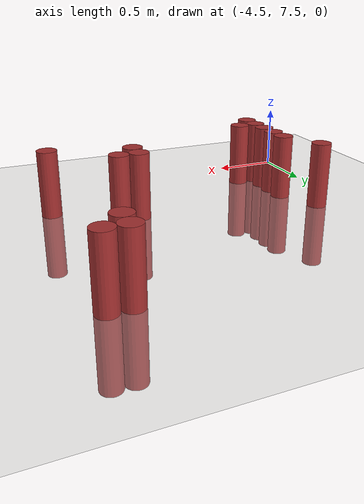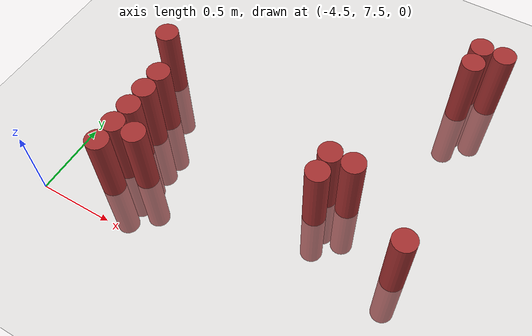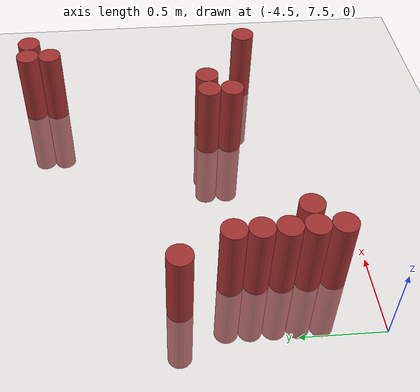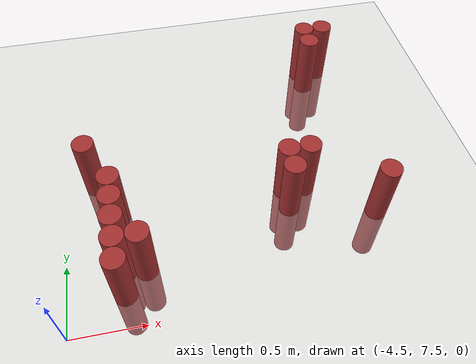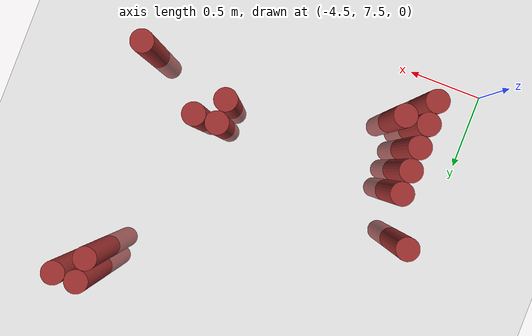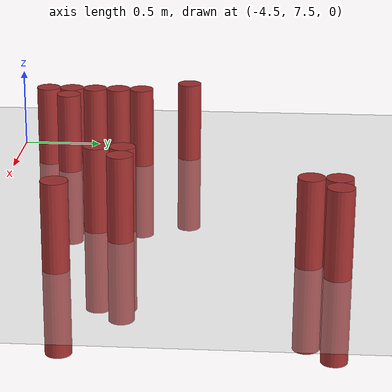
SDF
<sdf version="1.6">
 <world name="world_270">
  <model name="ground_plane">
   <static>1</static>
   <link name="link">
    <collision name="collision">
     <geometry><plane><normal>0 0 1</normal><size>100 100</size></plane></geometry>
     <surface><friction><ode><mu>100</mu><mu2>50</mu2></ode></friction></surface>
    </collision>
    <visual name="visual">
     <cast_shadows>0</cast_shadows>
     <geometry><plane><normal>0 0 1</normal><size>100 100</size></plane></geometry>
     <material>
      <script><uri>file://media/materials/scripts/gazebo.material</uri><name>Gazebo/Grey</name></script>
     </material>
    </visual>
   </link>
  </model>
  <model name="unit_cylinder_139">
   <static>1</static>
   <pose>-4.275000 8.625000 0.000000 0.000000 0.000000 0.000000</pose>
   <link name="link">
    <inertial>
     <mass>1</mass>
     <inertia><ixx>0.145833</ixx><ixy>0</ixy><ixz>0</ixz><iyy>0.145833</iyy><iyz>0</iyz><izz>0.125</izz></inertia>
    </inertial>
    <collision name="collision">
     <geometry><cylinder><radius>0.075000</radius><length>1</length></cylinder></geometry>
    </collision>
    <visual name="visual">
     <geometry><cylinder><radius>0.075000</radius><length>1</length></cylinder></geometry>
     <material>
      <ambient>0.648000 0.192000 0.192000 1</ambient>
      <diffuse>0.648000 0.192000 0.192000 1</diffuse>
     </material>
     <material>
      <script><name>Gazebo/Grey</name><uri>file://media/materials/scripts/gazebo.material</uri></script>
     </material>
    </visual>
   </link>
  </model>
  <model name="unit_cylinder_140">
   <static>1</static>
   <pose>-4.125000 7.725000 0.000000 0.000000 0.000000 0.000000</pose>
   <link name="link">
    <inertial>
     <mass>1</mass>
     <inertia><ixx>0.145833</ixx><ixy>0</ixy><ixz>0</ixz><iyy>0.145833</iyy><iyz>0</iyz><izz>0.125</izz></inertia>
    </inertial>
    <collision name="collision">
     <geometry><cylinder><radius>0.075000</radius><length>1</length></cylinder></geometry>
    </collision>
    <visual name="visual">
     <geometry><cylinder><radius>0.075000</radius><length>1</length></cylinder></geometry>
     <material>
      <ambient>0.648000 0.192000 0.192000 1</ambient>
      <diffuse>0.648000 0.192000 0.192000 1</diffuse>
     </material>
     <material>
      <script><name>Gazebo/Grey</name><uri>file://media/materials/scripts/gazebo.material</uri></script>
     </material>
    </visual>
   </link>
  </model>
  <model name="unit_cylinder_141">
   <static>1</static>
   <pose>-4.125000 7.875000 0.000000 0.000000 0.000000 0.000000</pose>
   <link name="link">
    <inertial>
     <mass>1</mass>
     <inertia><ixx>0.145833</ixx><ixy>0</ixy><ixz>0</ixz><iyy>0.145833</iyy><iyz>0</iyz><izz>0.125</izz></inertia>
    </inertial>
    <collision name="collision">
     <geometry><cylinder><radius>0.075000</radius><length>1</length></cylinder></geometry>
    </collision>
    <visual name="visual">
     <geometry><cylinder><radius>0.075000</radius><length>1</length></cylinder></geometry>
     <material>
      <ambient>0.648000 0.192000 0.192000 1</ambient>
      <diffuse>0.648000 0.192000 0.192000 1</diffuse>
     </material>
     <material>
      <script><name>Gazebo/Grey</name><uri>file://media/materials/scripts/gazebo.material</uri></script>
     </material>
    </visual>
   </link>
  </model>
  <model name="unit_cylinder_142">
   <static>1</static>
   <pose>-4.125000 8.025000 0.000000 0.000000 0.000000 0.000000</pose>
   <link name="link">
    <inertial>
     <mass>1</mass>
     <inertia><ixx>0.145833</ixx><ixy>0</ixy><ixz>0</ixz><iyy>0.145833</iyy><iyz>0</iyz><izz>0.125</izz></inertia>
    </inertial>
    <collision name="collision">
     <geometry><cylinder><radius>0.075000</radius><length>1</length></cylinder></geometry>
    </collision>
    <visual name="visual">
     <geometry><cylinder><radius>0.075000</radius><length>1</length></cylinder></geometry>
     <material>
      <ambient>0.648000 0.192000 0.192000 1</ambient>
      <diffuse>0.648000 0.192000 0.192000 1</diffuse>
     </material>
     <material>
      <script><name>Gazebo/Grey</name><uri>file://media/materials/scripts/gazebo.material</uri></script>
     </material>
    </visual>
   </link>
  </model>
  <model name="unit_cylinder_143">
   <static>1</static>
   <pose>-4.125000 8.175000 0.000000 0.000000 0.000000 0.000000</pose>
   <link name="link">
    <inertial>
     <mass>1</mass>
     <inertia><ixx>0.145833</ixx><ixy>0</ixy><ixz>0</ixz><iyy>0.145833</iyy><iyz>0</iyz><izz>0.125</izz></inertia>
    </inertial>
    <collision name="collision">
     <geometry><cylinder><radius>0.075000</radius><length>1</length></cylinder></geometry>
    </collision>
    <visual name="visual">
     <geometry><cylinder><radius>0.075000</radius><length>1</length></cylinder></geometry>
     <material>
      <ambient>0.648000 0.192000 0.192000 1</ambient>
      <diffuse>0.648000 0.192000 0.192000 1</diffuse>
     </material>
     <material>
      <script><name>Gazebo/Grey</name><uri>file://media/materials/scripts/gazebo.material</uri></script>
     </material>
    </visual>
   </link>
  </model>
  <model name="unit_cylinder_144">
   <static>1</static>
   <pose>-4.125000 8.325000 0.000000 0.000000 0.000000 0.000000</pose>
   <link name="link">
    <inertial>
     <mass>1</mass>
     <inertia><ixx>0.145833</ixx><ixy>0</ixy><ixz>0</ixz><iyy>0.145833</iyy><iyz>0</iyz><izz>0.125</izz></inertia>
    </inertial>
    <collision name="collision">
     <geometry><cylinder><radius>0.075000</radius><length>1</length></cylinder></geometry>
    </collision>
    <visual name="visual">
     <geometry><cylinder><radius>0.075000</radius><length>1</length></cylinder></geometry>
     <material>
      <ambient>0.648000 0.192000 0.192000 1</ambient>
      <diffuse>0.648000 0.192000 0.192000 1</diffuse>
     </material>
     <material>
      <script><name>Gazebo/Grey</name><uri>file://media/materials/scripts/gazebo.material</uri></script>
     </material>
    </visual>
   </link>
  </model>
  <model name="unit_cylinder_145">
   <static>1</static>
   <pose>-3.975000 7.875000 0.000000 0.000000 0.000000 0.000000</pose>
   <link name="link">
    <inertial>
     <mass>1</mass>
     <inertia><ixx>0.145833</ixx><ixy>0</ixy><ixz>0</ixz><iyy>0.145833</iyy><iyz>0</iyz><izz>0.125</izz></inertia>
    </inertial>
    <collision name="collision">
     <geometry><cylinder><radius>0.075000</radius><length>1</length></cylinder></geometry>
    </collision>
    <visual name="visual">
     <geometry><cylinder><radius>0.075000</radius><length>1</length></cylinder></geometry>
     <material>
      <ambient>0.648000 0.192000 0.192000 1</ambient>
      <diffuse>0.648000 0.192000 0.192000 1</diffuse>
     </material>
     <material>
      <script><name>Gazebo/Grey</name><uri>file://media/materials/scripts/gazebo.material</uri></script>
     </material>
    </visual>
   </link>
  </model>
  <model name="unit_cylinder_146">
   <static>1</static>
   <pose>-2.925000 8.175000 0.000000 0.000000 0.000000 0.000000</pose>
   <link name="link">
    <inertial>
     <mass>1</mass>
     <inertia><ixx>0.145833</ixx><ixy>0</ixy><ixz>0</ixz><iyy>0.145833</iyy><iyz>0</iyz><izz>0.125</izz></inertia>
    </inertial>
    <collision name="collision">
     <geometry><cylinder><radius>0.075000</radius><length>1</length></cylinder></geometry>
    </collision>
    <visual name="visual">
     <geometry><cylinder><radius>0.075000</radius><length>1</length></cylinder></geometry>
     <material>
      <ambient>0.648000 0.192000 0.192000 1</ambient>
      <diffuse>0.648000 0.192000 0.192000 1</diffuse>
     </material>
     <material>
      <script><name>Gazebo/Grey</name><uri>file://media/materials/scripts/gazebo.material</uri></script>
     </material>
    </visual>
   </link>
  </model>
  <model name="unit_cylinder_147">
   <static>1</static>
   <pose>-2.925000 8.325000 0.000000 0.000000 0.000000 0.000000</pose>
   <link name="link">
    <inertial>
     <mass>1</mass>
     <inertia><ixx>0.145833</ixx><ixy>0</ixy><ixz>0</ixz><iyy>0.145833</iyy><iyz>0</iyz><izz>0.125</izz></inertia>
    </inertial>
    <collision name="collision">
     <geometry><cylinder><radius>0.075000</radius><length>1</length></cylinder></geometry>
    </collision>
    <visual name="visual">
     <geometry><cylinder><radius>0.075000</radius><length>1</length></cylinder></geometry>
     <material>
      <ambient>0.648000 0.192000 0.192000 1</ambient>
      <diffuse>0.648000 0.192000 0.192000 1</diffuse>
     </material>
     <material>
      <script><name>Gazebo/Grey</name><uri>file://media/materials/scripts/gazebo.material</uri></script>
     </material>
    </visual>
   </link>
  </model>
  <model name="unit_cylinder_148">
   <static>1</static>
   <pose>-2.775000 8.325000 0.000000 0.000000 0.000000 0.000000</pose>
   <link name="link">
    <inertial>
     <mass>1</mass>
     <inertia><ixx>0.145833</ixx><ixy>0</ixy><ixz>0</ixz><iyy>0.145833</iyy><iyz>0</iyz><izz>0.125</izz></inertia>
    </inertial>
    <collision name="collision">
     <geometry><cylinder><radius>0.075000</radius><length>1</length></cylinder></geometry>
    </collision>
    <visual name="visual">
     <geometry><cylinder><radius>0.075000</radius><length>1</length></cylinder></geometry>
     <material>
      <ambient>0.648000 0.192000 0.192000 1</ambient>
      <diffuse>0.648000 0.192000 0.192000 1</diffuse>
     </material>
     <material>
      <script><name>Gazebo/Grey</name><uri>file://media/materials/scripts/gazebo.material</uri></script>
     </material>
    </visual>
   </link>
  </model>
  <model name="unit_cylinder_150">
   <static>1</static>
   <pose>-2.475000 9.375000 0.000000 0.000000 0.000000 0.000000</pose>
   <link name="link">
    <inertial>
     <mass>1</mass>
     <inertia><ixx>0.145833</ixx><ixy>0</ixy><ixz>0</ixz><iyy>0.145833</iyy><iyz>0</iyz><izz>0.125</izz></inertia>
    </inertial>
    <collision name="collision">
     <geometry><cylinder><radius>0.075000</radius><length>1</length></cylinder></geometry>
    </collision>
    <visual name="visual">
     <geometry><cylinder><radius>0.075000</radius><length>1</length></cylinder></geometry>
     <material>
      <ambient>0.648000 0.192000 0.192000 1</ambient>
      <diffuse>0.648000 0.192000 0.192000 1</diffuse>
     </material>
     <material>
      <script><name>Gazebo/Grey</name><uri>file://media/materials/scripts/gazebo.material</uri></script>
     </material>
    </visual>
   </link>
  </model>
  <model name="unit_cylinder_151">
   <static>1</static>
   <pose>-2.475000 9.525000 0.000000 0.000000 0.000000 0.000000</pose>
   <link name="link">
    <inertial>
     <mass>1</mass>
     <inertia><ixx>0.145833</ixx><ixy>0</ixy><ixz>0</ixz><iyy>0.145833</iyy><iyz>0</iyz><izz>0.125</izz></inertia>
    </inertial>
    <collision name="collision">
     <geometry><cylinder><radius>0.075000</radius><length>1</length></cylinder></geometry>
    </collision>
    <visual name="visual">
     <geometry><cylinder><radius>0.075000</radius><length>1</length></cylinder></geometry>
     <material>
      <ambient>0.648000 0.192000 0.192000 1</ambient>
      <diffuse>0.648000 0.192000 0.192000 1</diffuse>
     </material>
     <material>
      <script><name>Gazebo/Grey</name><uri>file://media/materials/scripts/gazebo.material</uri></script>
     </material>
    </visual>
   </link>
  </model>
  <model name="unit_cylinder_156">
   <static>1</static>
   <pose>-2.325000 8.025000 0.000000 0.000000 0.000000 0.000000</pose>
   <link name="link">
    <inertial>
     <mass>1</mass>
     <inertia><ixx>0.145833</ixx><ixy>0</ixy><ixz>0</ixz><iyy>0.145833</iyy><iyz>0</iyz><izz>0.125</izz></inertia>
    </inertial>
    <collision name="collision">
     <geometry><cylinder><radius>0.075000</radius><length>1</length></cylinder></geometry>
    </collision>
    <visual name="visual">
     <geometry><cylinder><radius>0.075000</radius><length>1</length></cylinder></geometry>
     <material>
      <ambient>0.648000 0.192000 0.192000 1</ambient>
      <diffuse>0.648000 0.192000 0.192000 1</diffuse>
     </material>
     <material>
      <script><name>Gazebo/Grey</name><uri>file://media/materials/scripts/gazebo.material</uri></script>
     </material>
    </visual>
   </link>
  </model>
  <model name="unit_cylinder_157">
   <static>1</static>
   <pose>-2.325000 9.525000 0.000000 0.000000 0.000000 0.000000</pose>
   <link name="link">
    <inertial>
     <mass>1</mass>
     <inertia><ixx>0.145833</ixx><ixy>0</ixy><ixz>0</ixz><iyy>0.145833</iyy><iyz>0</iyz><izz>0.125</izz></inertia>
    </inertial>
    <collision name="collision">
     <geometry><cylinder><radius>0.075000</radius><length>1</length></cylinder></geometry>
    </collision>
    <visual name="visual">
     <geometry><cylinder><radius>0.075000</radius><length>1</length></cylinder></geometry>
     <material>
      <ambient>0.648000 0.192000 0.192000 1</ambient>
      <diffuse>0.648000 0.192000 0.192000 1</diffuse>
     </material>
     <material>
      <script><name>Gazebo/Grey</name><uri>file://media/materials/scripts/gazebo.material</uri></script>
     </material>
    </visual>
   </link>
  </model>
 </world>
</sdf>
